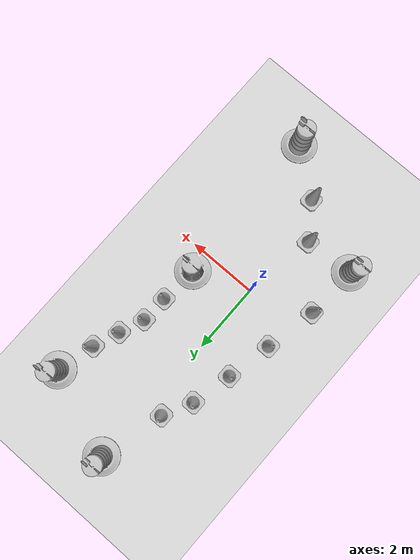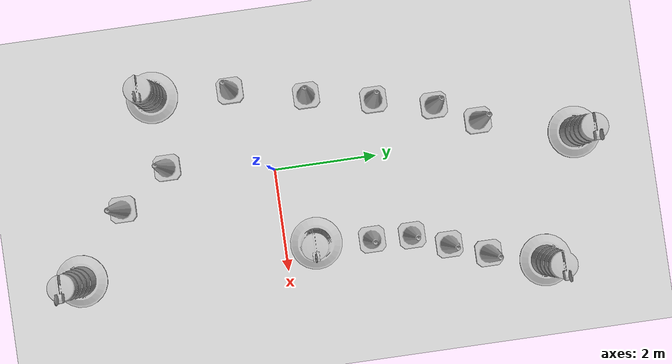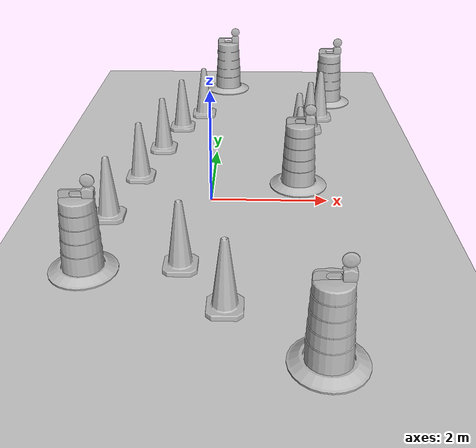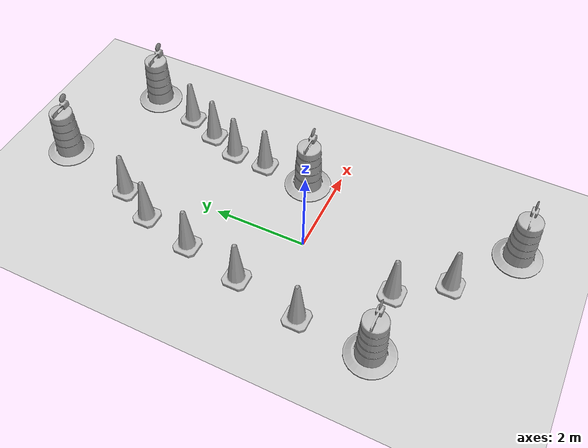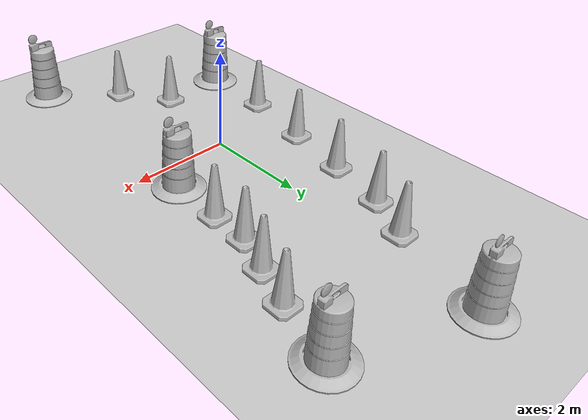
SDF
<sdf version="1.7">
 <world name="default">
  <light name="sun" type="directional">
   <pose>0 0 10 0 -0 0</pose>
   <diffuse>0.8 0.8 0.8 1</diffuse>
   <specular>0.2 0.2 0.2 1</specular>
   <attenuation>
    <range>1000</range>
    <constant>0.9</constant>
    <linear>0.01</linear>
    <quadratic>0.001</quadratic>
   </attenuation>
   <direction>-0.5 0.1 -0.9</direction>
   <spot><inner_angle>0</inner_angle><outer_angle>0</outer_angle><falloff>0</falloff></spot>
  </light>
  <model name="ground_plane">
   <static>1</static>
   <link name="link">
    <collision name="collision">
     <geometry><plane><normal>0 0 1</normal><size>100 100</size></plane></geometry>
     <surface>
      <contact><collide_bitmask>65535</collide_bitmask></contact>
      <friction><ode><mu>100</mu><mu2>50</mu2></ode></friction>
     </surface>
    </collision>
    <visual name="visual">
     <cast_shadows>0</cast_shadows>
     <geometry><plane><normal>0 0 1</normal><size>100 100</size></plane></geometry>
     <material>
      <script><uri>file://media/materials/scripts/gazebo.material</uri><name>Gazebo/Grey</name></script>
     </material>
    </visual>
   </link>
  </model>
  <gravity>0 0 -9.8</gravity>
  <magnetic_field>6e-06 2.3e-05 -4.2e-05</magnetic_field>
  <atmosphere type="adiabatic"/>
  <physics type="ode">
   <max_step_size>0.001</max_step_size>
   <real_time_factor>1</real_time_factor>
   <real_time_update_rate>1000</real_time_update_rate>
  </physics>
  <scene><ambient>0.4 0.4 0.4 1</ambient><background>0.7 0.7 0.7 1</background><shadows>1</shadows></scene>
  <audio><device>default</device></audio>
  <spherical_coordinates>
   <surface_model>EARTH_WGS84</surface_model>
   <latitude_deg>0</latitude_deg>
   <longitude_deg>0</longitude_deg>
   <elevation>0</elevation>
   <heading_deg>0</heading_deg>
  </spherical_coordinates>
  <model name="Construction Cone">
   <link name="link">
    <collision name="collision">
     <geometry>
      <mesh><scale>10 10 10</scale><uri>model://construction_cone/meshes/construction_cone.dae</uri></mesh>
     </geometry>
    </collision>
    <visual name="visual">
     <geometry>
      <mesh><scale>10 10 10</scale><uri>model://construction_cone/meshes/construction_cone.dae</uri></mesh>
     </geometry>
    </visual>
    <inertial>
     <inertia><ixx>1</ixx><ixy>0</ixy><ixz>0</ixz><iyy>1</iyy><iyz>0</iyz><izz>1</izz></inertia>
     <mass>1</mass>
    </inertial>
   </link>
   <pose>1.61217 1.69292 -1e-05 -0 -0 -0</pose>
  </model>
  <model name="Construction Cone_0">
   <link name="link">
    <collision name="collision">
     <geometry>
      <mesh><scale>10 10 10</scale><uri>model://construction_cone/meshes/construction_cone.dae</uri></mesh>
     </geometry>
    </collision>
    <visual name="visual">
     <geometry>
      <mesh><scale>10 10 10</scale><uri>model://construction_cone/meshes/construction_cone.dae</uri></mesh>
     </geometry>
    </visual>
    <inertial>
     <inertia><ixx>1</ixx><ixy>0</ixy><ixz>0</ixz><iyy>1</iyy><iyz>0</iyz><izz>1</izz></inertia>
     <mass>1</mass>
    </inertial>
   </link>
   <pose>-0.809531 3.2536 -0 0 -0 0</pose>
  </model>
  <model name="Construction Barrel">
   <link name="link">
    <inertial>
     <pose>0 0 0.4 0 -0 0</pose>
     <mass>500</mass>
     <inertia><ixx>51.2096</ixx><iyy>51.2096</iyy><izz>25</izz><ixy>0</ixy><ixz>0</ixz><iyz>0</iyz></inertia>
    </inertial>
    <collision name="collision">
     <geometry><mesh><uri>model://construction_barrel/meshes/construction_barrel.dae</uri></mesh></geometry>
    </collision>
    <visual name="visual">
     <geometry><mesh><uri>model://construction_barrel/meshes/construction_barrel.dae</uri></mesh></geometry>
    </visual>
   </link>
   <pose>0.091905 5.8958 -2e-06 0 7e-06 -2.5e-05</pose>
  </model>
  <model name="Construction Cone_1">
   <link name="link">
    <collision name="collision">
     <geometry>
      <mesh><scale>10 10 10</scale><uri>model://construction_cone/meshes/construction_cone.dae</uri></mesh>
     </geometry>
    </collision>
    <visual name="visual">
     <geometry>
      <mesh><scale>10 10 10</scale><uri>model://construction_cone/meshes/construction_cone.dae</uri></mesh>
     </geometry>
    </visual>
    <inertial>
     <inertia><ixx>1</ixx><ixy>0</ixy><ixz>0</ixz><iyy>1</iyy><iyz>0</iyz><izz>1</izz></inertia>
     <mass>1</mass>
    </inertial>
   </link>
   <pose>-0.395266 4.06271 -9e-06 0 -0 0</pose>
  </model>
  <model name="Construction Cone_2">
   <link name="link">
    <collision name="collision">
     <geometry>
      <mesh><scale>10 10 10</scale><uri>model://construction_cone/meshes/construction_cone.dae</uri></mesh>
     </geometry>
    </collision>
    <visual name="visual">
     <geometry>
      <mesh><scale>10 10 10</scale><uri>model://construction_cone/meshes/construction_cone.dae</uri></mesh>
     </geometry>
    </visual>
    <inertial>
     <inertia><ixx>1</ixx><ixy>0</ixy><ixz>0</ixz><iyy>1</iyy><iyz>0</iyz><izz>1</izz></inertia>
     <mass>1</mass>
    </inertial>
   </link>
   <pose>-1.08196 2.10017 -0 0 -0 0</pose>
  </model>
  <model name="Construction Cone_3">
   <link name="link">
    <collision name="collision">
     <geometry>
      <mesh><scale>10 10 10</scale><uri>model://construction_cone/meshes/construction_cone.dae</uri></mesh>
     </geometry>
    </collision>
    <visual name="visual">
     <geometry>
      <mesh><scale>10 10 10</scale><uri>model://construction_cone/meshes/construction_cone.dae</uri></mesh>
     </geometry>
    </visual>
    <inertial>
     <inertia><ixx>1</ixx><ixy>0</ixy><ixz>0</ixz><iyy>1</iyy><iyz>0</iyz><izz>1</izz></inertia>
     <mass>1</mass>
    </inertial>
   </link>
   <pose>-1.34904 0.811804 0 -0 -0 -0</pose>
  </model>
  <model name="Construction Cone_4">
   <link name="link">
    <collision name="collision">
     <geometry>
      <mesh><scale>10 10 10</scale><uri>model://construction_cone/meshes/construction_cone.dae</uri></mesh>
     </geometry>
    </collision>
    <visual name="visual">
     <geometry>
      <mesh><scale>10 10 10</scale><uri>model://construction_cone/meshes/construction_cone.dae</uri></mesh>
     </geometry>
    </visual>
    <inertial>
     <inertia><ixx>1</ixx><ixy>0</ixy><ixz>0</ixz><iyy>1</iyy><iyz>0</iyz><izz>1</izz></inertia>
     <mass>1</mass>
    </inertial>
   </link>
   <pose>-1.65236 -0.649313 -0 0 -0 0</pose>
  </model>
  <model name="Construction Barrel_0">
   <link name="link">
    <inertial>
     <pose>0 0 0.4 0 -0 0</pose>
     <mass>500</mass>
     <inertia><ixx>51.2096</ixx><iyy>51.2096</iyy><izz>25</izz><ixy>0</ixy><ixz>0</ixz><iyz>0</iyz></inertia>
    </inertial>
    <collision name="collision">
     <geometry><mesh><uri>model://construction_barrel/meshes/construction_barrel.dae</uri></mesh></geometry>
    </collision>
    <visual name="visual">
     <geometry><mesh><uri>model://construction_barrel/meshes/construction_barrel.dae</uri></mesh></geometry>
    </visual>
   </link>
   <pose>-1.73298 -2.17989 0 0 -0 -1.9e-05</pose>
  </model>
  <model name="Construction Barrel_1">
   <link name="link">
    <inertial>
     <pose>0 0 0.4 0 -0 0</pose>
     <mass>500</mass>
     <inertia><ixx>51.2096</ixx><iyy>51.2096</iyy><izz>25</izz><ixy>0</ixy><ixz>0</ixz><iyz>0</iyz></inertia>
    </inertial>
    <collision name="collision">
     <geometry><mesh><uri>model://construction_barrel/meshes/construction_barrel.dae</uri></mesh></geometry>
    </collision>
    <visual name="visual">
     <geometry><mesh><uri>model://construction_barrel/meshes/construction_barrel.dae</uri></mesh></geometry>
    </visual>
   </link>
   <pose>2.48793 4.98967 0 1e-06 1e-06 -1.8e-05</pose>
  </model>
  <model name="Construction Cone_5">
   <link name="link">
    <collision name="collision">
     <geometry>
      <mesh><scale>10 10 10</scale><uri>model://construction_cone/meshes/construction_cone.dae</uri></mesh>
     </geometry>
    </collision>
    <visual name="visual">
     <geometry>
      <mesh><scale>10 10 10</scale><uri>model://construction_cone/meshes/construction_cone.dae</uri></mesh>
     </geometry>
    </visual>
    <inertial>
     <inertia><ixx>1</ixx><ixy>0</ixy><ixz>0</ixz><iyy>1</iyy><iyz>0</iyz><izz>1</izz></inertia>
     <mass>1</mass>
    </inertial>
   </link>
   <pose>2.19693 3.90078 -0 0 -1e-06 0</pose>
  </model>
  <model name="Construction Cone_6">
   <link name="link">
    <collision name="collision">
     <geometry>
      <mesh><scale>10 10 10</scale><uri>model://construction_cone/meshes/construction_cone.dae</uri></mesh>
     </geometry>
    </collision>
    <visual name="visual">
     <geometry>
      <mesh><scale>10 10 10</scale><uri>model://construction_cone/meshes/construction_cone.dae</uri></mesh>
     </geometry>
    </visual>
    <inertial>
     <inertia><ixx>1</ixx><ixy>0</ixy><ixz>0</ixz><iyy>1</iyy><iyz>0</iyz><izz>1</izz></inertia>
     <mass>1</mass>
    </inertial>
   </link>
   <pose>1.91793 3.16452 -0 -0 -0 -0</pose>
  </model>
  <model name="Construction Cone_7">
   <link name="link">
    <collision name="collision">
     <geometry>
      <mesh><scale>10 10 10</scale><uri>model://construction_cone/meshes/construction_cone.dae</uri></mesh>
     </geometry>
    </collision>
    <visual name="visual">
     <geometry>
      <mesh><scale>10 10 10</scale><uri>model://construction_cone/meshes/construction_cone.dae</uri></mesh>
     </geometry>
    </visual>
    <inertial>
     <inertia><ixx>1</ixx><ixy>0</ixy><ixz>0</ixz><iyy>1</iyy><iyz>0</iyz><izz>1</izz></inertia>
     <mass>1</mass>
    </inertial>
   </link>
   <pose>1.64129 2.47246 -0 0 -0 0</pose>
  </model>
  <model name="Construction Barrel_2">
   <link name="link">
    <inertial>
     <pose>0 0 0.4 0 -0 0</pose>
     <mass>500</mass>
     <inertia><ixx>51.2096</ixx><iyy>51.2096</iyy><izz>25</izz><ixy>0</ixy><ixz>0</ixz><iyz>0</iyz></inertia>
    </inertial>
    <collision name="collision">
     <geometry><mesh><uri>model://construction_barrel/meshes/construction_barrel.dae</uri></mesh></geometry>
    </collision>
    <visual name="visual">
     <geometry><mesh><uri>model://construction_barrel/meshes/construction_barrel.dae</uri></mesh></geometry>
    </visual>
   </link>
   <pose>1.53439 0.604274 -1e-06 2e-06 -1e-06 -1e-05</pose>
  </model>
  <model name="Construction Cone_8">
   <link name="link">
    <collision name="collision">
     <geometry>
      <mesh><scale>10 10 10</scale><uri>model://construction_cone/meshes/construction_cone.dae</uri></mesh>
     </geometry>
    </collision>
    <visual name="visual">
     <geometry>
      <mesh><scale>10 10 10</scale><uri>model://construction_cone/meshes/construction_cone.dae</uri></mesh>
     </geometry>
    </visual>
    <inertial>
     <inertia><ixx>1</ixx><ixy>0</ixy><ixz>0</ixz><iyy>1</iyy><iyz>0</iyz><izz>1</izz></inertia>
     <mass>1</mass>
    </inertial>
   </link>
   <pose>-0.332071 -2.07122 -0 0 -1e-06 0</pose>
  </model>
  <model name="Construction Cone_9">
   <link name="link">
    <collision name="collision">
     <geometry>
      <mesh><scale>10 10 10</scale><uri>model://construction_cone/meshes/construction_cone.dae</uri></mesh>
     </geometry>
    </collision>
    <visual name="visual">
     <geometry>
      <mesh><scale>10 10 10</scale><uri>model://construction_cone/meshes/construction_cone.dae</uri></mesh>
     </geometry>
    </visual>
    <inertial>
     <inertia><ixx>1</ixx><ixy>0</ixy><ixz>0</ixz><iyy>1</iyy><iyz>0</iyz><izz>1</izz></inertia>
     <mass>1</mass>
    </inertial>
   </link>
   <pose>0.352974 -3.03631 -0 0 -1e-06 0</pose>
  </model>
  <model name="Construction Barrel_3">
   <link name="link">
    <inertial>
     <pose>0 0 0.4 0 -0 0</pose>
     <mass>500</mass>
     <inertia><ixx>51.2096</ixx><iyy>51.2096</iyy><izz>25</izz><ixy>0</ixy><ixz>0</ixz><iyz>0</iyz></inertia>
    </inertial>
    <collision name="collision">
     <geometry><mesh><uri>model://construction_barrel/meshes/construction_barrel.dae</uri></mesh></geometry>
    </collision>
    <visual name="visual">
     <geometry><mesh><uri>model://construction_barrel/meshes/construction_barrel.dae</uri></mesh></geometry>
    </visual>
   </link>
   <pose>1.62538 -4.03073 -2e-06 4e-06 7e-06 -4e-06</pose>
  </model>
 </world>
</sdf>
